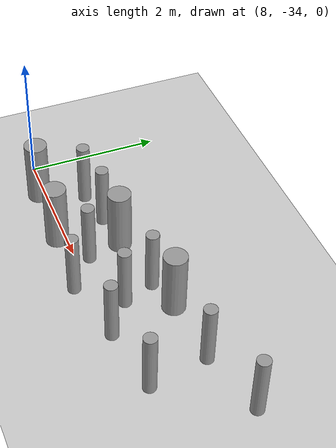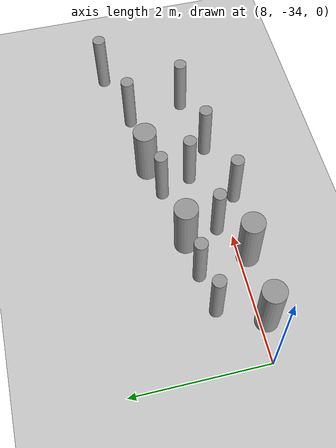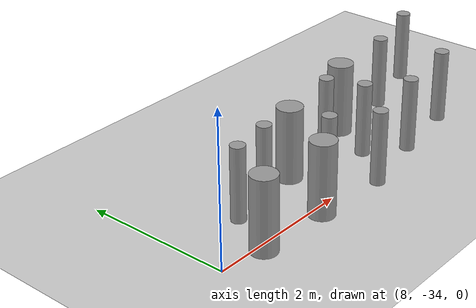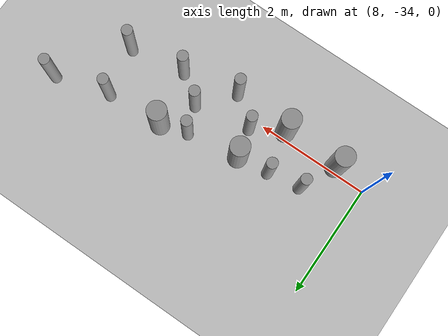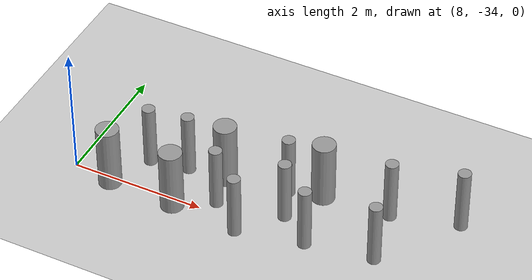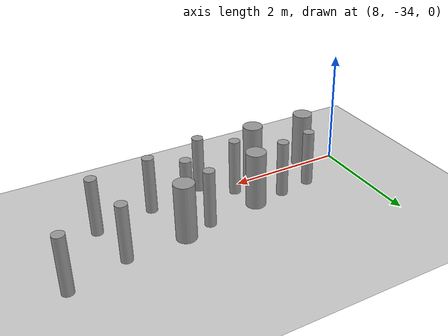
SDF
<sdf version="1.6">
 <world name="default">
  <model name="ground_plane">
   <static>1</static>
   <link name="link">
    <collision name="collision">
     <geometry><plane><normal>0 0 1</normal><size>100 100</size></plane></geometry>
     <surface><friction><ode><mu>100</mu><mu2>50</mu2></ode></friction></surface>
    </collision>
    <visual name="visual">
     <cast_shadows>0</cast_shadows>
     <geometry><plane><normal>0 0 1</normal><size>100 100</size></plane></geometry>
     <material>
      <script><uri>file://media/materials/scripts/gazebo.material</uri><name>Gazebo/Grey</name></script>
     </material>
    </visual>
   </link>
  </model>
  <model name="cyl_wall_clone_clone_1_clone_1_clone_clone_1_clone_0_clone">
   <link name="link_0">
    <pose>-2.73893 -0.366465 0 0 -0 0</pose>
    <inertial>
     <mass>0.0374993</mass>
     <inertia>
      <ixx>0.00321281</ixx>
      <ixy>0</ixy>
      <ixz>0</ixz>
      <iyy>0.00321281</iyy>
      <iyz>0</iyz>
      <izz>0.000175774</izz>
     </inertia>
    </inertial>
    <visual name="visual">
     <geometry><cylinder><radius>0.0968661</radius><length>1</length></cylinder></geometry>
     <material>
      <lighting>1</lighting>
      <script><uri>file://media/materials/scripts/gazebo.material</uri><name>Gazebo/Grey</name></script>
      <ambient>0.3 0.3 0.3 1</ambient>
      <diffuse>0.7 0.7 0.7 1</diffuse>
      <specular>0.01 0.01 0.01 1</specular>
      <emissive>0 0 0 1</emissive>
     </material>
    </visual>
    <collision name="collision">
     <geometry><cylinder><radius>0.096866</radius><length>1</length></cylinder></geometry>
     <surface>
      <friction>
       <ode><mu>1</mu><mu2>1</mu2><fdir1>0 0 0</fdir1><slip1>0</slip1><slip2>0</slip2></ode>
       <torsional>
        <coefficient>1</coefficient>
        <patch_radius>0</patch_radius>
        <surface_radius>0</surface_radius>
        <use_patch_radius>1</use_patch_radius>
        <ode><slip>0</slip></ode>
       </torsional>
      </friction>
      <bounce><restitution_coefficient>0</restitution_coefficient><threshold>1e+06</threshold></bounce>
      <contact>
       <collide_without_contact>0</collide_without_contact>
       <collide_without_contact_bitmask>1</collide_without_contact_bitmask>
       <collide_bitmask>1</collide_bitmask>
       <ode>
        <soft_cfm>0</soft_cfm>
        <soft_erp>0.2</soft_erp>
        <kp>1e+13</kp>
        <kd>1</kd>
        <max_vel>0.01</max_vel>
        <min_depth>0</min_depth>
       </ode>
       <bullet>
        <split_impulse>1</split_impulse>
        <split_impulse_penetration_threshold>-0.01</split_impulse_penetration_threshold>
        <soft_cfm>0</soft_cfm>
        <soft_erp>0.2</soft_erp>
        <kp>1e+13</kp>
        <kd>1</kd>
       </bullet>
      </contact>
     </surface>
    </collision>
   </link>
   <link name="link_0_clone">
    <pose>-1.73893 0.61877 0 0 -0 0</pose>
    <inertial>
     <mass>0.0374993</mass>
     <inertia>
      <ixx>0.00321281</ixx>
      <ixy>0</ixy>
      <ixz>0</ixz>
      <iyy>0.00321281</iyy>
      <iyz>0</iyz>
      <izz>0.000175774</izz>
     </inertia>
    </inertial>
    <visual name="visual">
     <geometry><cylinder><radius>0.0968661</radius><length>1</length></cylinder></geometry>
     <material>
      <lighting>1</lighting>
      <script><uri>file://media/materials/scripts/gazebo.material</uri><name>Gazebo/Grey</name></script>
      <ambient>0.3 0.3 0.3 1</ambient>
      <diffuse>0.7 0.7 0.7 1</diffuse>
      <specular>0.01 0.01 0.01 1</specular>
      <emissive>0 0 0 1</emissive>
      <shader type="pixel"/>
     </material>
    </visual>
    <collision name="collision">
     <geometry><cylinder><radius>0.096866</radius><length>1</length></cylinder></geometry>
     <surface>
      <friction>
       <ode><mu>1</mu><mu2>1</mu2><fdir1>0 0 0</fdir1><slip1>0</slip1><slip2>0</slip2></ode>
       <torsional>
        <coefficient>1</coefficient>
        <patch_radius>0</patch_radius>
        <surface_radius>0</surface_radius>
        <use_patch_radius>1</use_patch_radius>
        <ode><slip>0</slip></ode>
       </torsional>
      </friction>
      <bounce><restitution_coefficient>0</restitution_coefficient><threshold>1e+06</threshold></bounce>
      <contact>
       <collide_without_contact>0</collide_without_contact>
       <collide_without_contact_bitmask>1</collide_without_contact_bitmask>
       <collide_bitmask>1</collide_bitmask>
       <ode>
        <soft_cfm>0</soft_cfm>
        <soft_erp>0.2</soft_erp>
        <kp>1e+13</kp>
        <kd>1</kd>
        <max_vel>0.01</max_vel>
        <min_depth>0</min_depth>
       </ode>
       <bullet>
        <split_impulse>1</split_impulse>
        <split_impulse_penetration_threshold>-0.01</split_impulse_penetration_threshold>
        <soft_cfm>0</soft_cfm>
        <soft_erp>0.2</soft_erp>
        <kp>1e+13</kp>
        <kd>1</kd>
       </bullet>
      </contact>
     </surface>
    </collision>
   </link>
   <link name="link_0_clone_clone">
    <pose>-0.327073 0.143919 0 0 -0 0</pose>
    <inertial>
     <mass>0.0374993</mass>
     <inertia>
      <ixx>0.00321281</ixx>
      <ixy>0</ixy>
      <ixz>0</ixz>
      <iyy>0.00321281</iyy>
      <iyz>0</iyz>
      <izz>0.000175774</izz>
     </inertia>
    </inertial>
    <visual name="visual">
     <geometry><cylinder><radius>0.0968661</radius><length>1</length></cylinder></geometry>
     <material>
      <lighting>1</lighting>
      <script><uri>file://media/materials/scripts/gazebo.material</uri><name>Gazebo/Grey</name></script>
      <ambient>0.3 0.3 0.3 1</ambient>
      <diffuse>0.7 0.7 0.7 1</diffuse>
      <specular>0.01 0.01 0.01 1</specular>
      <emissive>0 0 0 1</emissive>
      <shader type="pixel"/>
     </material>
    </visual>
    <collision name="collision">
     <geometry><cylinder><radius>0.096866</radius><length>1</length></cylinder></geometry>
     <surface>
      <friction>
       <ode><mu>1</mu><mu2>1</mu2><fdir1>0 0 0</fdir1><slip1>0</slip1><slip2>0</slip2></ode>
       <torsional>
        <coefficient>1</coefficient>
        <patch_radius>0</patch_radius>
        <surface_radius>0</surface_radius>
        <use_patch_radius>1</use_patch_radius>
        <ode><slip>0</slip></ode>
       </torsional>
      </friction>
      <bounce><restitution_coefficient>0</restitution_coefficient><threshold>1e+06</threshold></bounce>
      <contact>
       <collide_without_contact>0</collide_without_contact>
       <collide_without_contact_bitmask>1</collide_without_contact_bitmask>
       <collide_bitmask>1</collide_bitmask>
       <ode>
        <soft_cfm>0</soft_cfm>
        <soft_erp>0.2</soft_erp>
        <kp>1e+13</kp>
        <kd>1</kd>
        <max_vel>0.01</max_vel>
        <min_depth>0</min_depth>
       </ode>
       <bullet>
        <split_impulse>1</split_impulse>
        <split_impulse_penetration_threshold>-0.01</split_impulse_penetration_threshold>
        <soft_cfm>0</soft_cfm>
        <soft_erp>0.2</soft_erp>
        <kp>1e+13</kp>
        <kd>1</kd>
       </bullet>
      </contact>
     </surface>
    </collision>
   </link>
   <link name="link_0_clone_clone_0">
    <pose>1.26107 -0.419359 0 0 -0 0</pose>
    <inertial>
     <mass>0.0374993</mass>
     <inertia>
      <ixx>0.00321281</ixx>
      <ixy>0</ixy>
      <ixz>0</ixz>
      <iyy>0.00321281</iyy>
      <iyz>0</iyz>
      <izz>0.000175774</izz>
     </inertia>
    </inertial>
    <visual name="visual">
     <geometry><cylinder><radius>0.0968661</radius><length>1</length></cylinder></geometry>
     <material>
      <lighting>1</lighting>
      <script><uri>file://media/materials/scripts/gazebo.material</uri><name>Gazebo/Grey</name></script>
      <ambient>0.3 0.3 0.3 1</ambient>
      <diffuse>0.7 0.7 0.7 1</diffuse>
      <specular>0.01 0.01 0.01 1</specular>
      <emissive>0 0 0 1</emissive>
      <shader type="pixel"/>
     </material>
    </visual>
    <collision name="collision">
     <geometry><cylinder><radius>0.096866</radius><length>1</length></cylinder></geometry>
     <surface>
      <friction>
       <ode><mu>1</mu><mu2>1</mu2><fdir1>0 0 0</fdir1><slip1>0</slip1><slip2>0</slip2></ode>
       <torsional>
        <coefficient>1</coefficient>
        <patch_radius>0</patch_radius>
        <surface_radius>0</surface_radius>
        <use_patch_radius>1</use_patch_radius>
        <ode><slip>0</slip></ode>
       </torsional>
      </friction>
      <bounce><restitution_coefficient>0</restitution_coefficient><threshold>1e+06</threshold></bounce>
      <contact>
       <collide_without_contact>0</collide_without_contact>
       <collide_without_contact_bitmask>1</collide_without_contact_bitmask>
       <collide_bitmask>1</collide_bitmask>
       <ode>
        <soft_cfm>0</soft_cfm>
        <soft_erp>0.2</soft_erp>
        <kp>1e+13</kp>
        <kd>1</kd>
        <max_vel>0.01</max_vel>
        <min_depth>0</min_depth>
       </ode>
       <bullet>
        <split_impulse>1</split_impulse>
        <split_impulse_penetration_threshold>-0.01</split_impulse_penetration_threshold>
        <soft_cfm>0</soft_cfm>
        <soft_erp>0.2</soft_erp>
        <kp>1e+13</kp>
        <kd>1</kd>
       </bullet>
      </contact>
     </surface>
    </collision>
   </link>
   <link name="link_0_clone_clone_1">
    <pose>-1.73893 -0.277168 0 0 -0 0</pose>
    <inertial>
     <mass>0.0374993</mass>
     <inertia>
      <ixx>0.00321281</ixx>
      <ixy>0</ixy>
      <ixz>0</ixz>
      <iyy>0.00321281</iyy>
      <iyz>0</iyz>
      <izz>0.000175774</izz>
     </inertia>
    </inertial>
    <visual name="visual">
     <geometry><cylinder><radius>0.0968661</radius><length>1</length></cylinder></geometry>
     <material>
      <lighting>1</lighting>
      <script><uri>file://media/materials/scripts/gazebo.material</uri><name>Gazebo/Grey</name></script>
      <ambient>0.3 0.3 0.3 1</ambient>
      <diffuse>0.7 0.7 0.7 1</diffuse>
      <specular>0.01 0.01 0.01 1</specular>
      <emissive>0 0 0 1</emissive>
      <shader type="pixel"/>
     </material>
    </visual>
    <collision name="collision">
     <geometry><cylinder><radius>0.096866</radius><length>1</length></cylinder></geometry>
     <surface>
      <friction>
       <ode><mu>1</mu><mu2>1</mu2><fdir1>0 0 0</fdir1><slip1>0</slip1><slip2>0</slip2></ode>
       <torsional>
        <coefficient>1</coefficient>
        <patch_radius>0</patch_radius>
        <surface_radius>0</surface_radius>
        <use_patch_radius>1</use_patch_radius>
        <ode><slip>0</slip></ode>
       </torsional>
      </friction>
      <bounce><restitution_coefficient>0</restitution_coefficient><threshold>1e+06</threshold></bounce>
      <contact>
       <collide_without_contact>0</collide_without_contact>
       <collide_without_contact_bitmask>1</collide_without_contact_bitmask>
       <collide_bitmask>1</collide_bitmask>
       <ode>
        <soft_cfm>0</soft_cfm>
        <soft_erp>0.2</soft_erp>
        <kp>1e+13</kp>
        <kd>1</kd>
        <max_vel>0.01</max_vel>
        <min_depth>0</min_depth>
       </ode>
       <bullet>
        <split_impulse>1</split_impulse>
        <split_impulse_penetration_threshold>-0.01</split_impulse_penetration_threshold>
        <soft_cfm>0</soft_cfm>
        <soft_erp>0.2</soft_erp>
        <kp>1e+13</kp>
        <kd>1</kd>
       </bullet>
      </contact>
     </surface>
    </collision>
   </link>
   <link name="link_0_clone_clone_2">
    <pose>-0.738934 0.593961 0 0 -0 0</pose>
    <inertial>
     <mass>0.0374993</mass>
     <inertia>
      <ixx>0.00321281</ixx>
      <ixy>0</ixy>
      <ixz>0</ixz>
      <iyy>0.00321281</iyy>
      <iyz>0</iyz>
      <izz>0.000175774</izz>
     </inertia>
    </inertial>
    <visual name="visual">
     <geometry><cylinder><radius>0.0968661</radius><length>1</length></cylinder></geometry>
     <material>
      <lighting>1</lighting>
      <script><uri>file://media/materials/scripts/gazebo.material</uri><name>Gazebo/Grey</name></script>
      <ambient>0.3 0.3 0.3 1</ambient>
      <diffuse>0.7 0.7 0.7 1</diffuse>
      <specular>0.01 0.01 0.01 1</specular>
      <emissive>0 0 0 1</emissive>
      <shader type="pixel"/>
     </material>
    </visual>
    <collision name="collision">
     <geometry><cylinder><radius>0.096866</radius><length>1</length></cylinder></geometry>
     <surface>
      <friction>
       <ode><mu>1</mu><mu2>1</mu2><fdir1>0 0 0</fdir1><slip1>0</slip1><slip2>0</slip2></ode>
       <torsional>
        <coefficient>1</coefficient>
        <patch_radius>0</patch_radius>
        <surface_radius>0</surface_radius>
        <use_patch_radius>1</use_patch_radius>
        <ode><slip>0</slip></ode>
       </torsional>
      </friction>
      <bounce><restitution_coefficient>0</restitution_coefficient><threshold>1e+06</threshold></bounce>
      <contact>
       <collide_without_contact>0</collide_without_contact>
       <collide_without_contact_bitmask>1</collide_without_contact_bitmask>
       <collide_bitmask>1</collide_bitmask>
       <ode>
        <soft_cfm>0</soft_cfm>
        <soft_erp>0.2</soft_erp>
        <kp>1e+13</kp>
        <kd>1</kd>
        <max_vel>0.01</max_vel>
        <min_depth>0</min_depth>
       </ode>
       <bullet>
        <split_impulse>1</split_impulse>
        <split_impulse_penetration_threshold>-0.01</split_impulse_penetration_threshold>
        <soft_cfm>0</soft_cfm>
        <soft_erp>0.2</soft_erp>
        <kp>1e+13</kp>
        <kd>1</kd>
       </bullet>
      </contact>
     </surface>
    </collision>
   </link>
   <link name="link_0_clone_clone_3">
    <pose>0.261066 0.624849 0 0 -0 0</pose>
    <inertial>
     <mass>0.0374993</mass>
     <inertia>
      <ixx>0.00321281</ixx>
      <ixy>0</ixy>
      <ixz>0</ixz>
      <iyy>0.00321281</iyy>
      <iyz>0</iyz>
      <izz>0.000175774</izz>
     </inertia>
    </inertial>
    <visual name="visual">
     <geometry><cylinder><radius>0.0968661</radius><length>1</length></cylinder></geometry>
     <material>
      <lighting>1</lighting>
      <script><uri>file://media/materials/scripts/gazebo.material</uri><name>Gazebo/Grey</name></script>
      <ambient>0.3 0.3 0.3 1</ambient>
      <diffuse>0.7 0.7 0.7 1</diffuse>
      <specular>0.01 0.01 0.01 1</specular>
      <emissive>0 0 0 1</emissive>
      <shader type="pixel"/>
     </material>
    </visual>
    <collision name="collision">
     <geometry><cylinder><radius>0.096866</radius><length>1</length></cylinder></geometry>
     <surface>
      <friction>
       <ode><mu>1</mu><mu2>1</mu2><fdir1>0 0 0</fdir1><slip1>0</slip1><slip2>0</slip2></ode>
       <torsional>
        <coefficient>1</coefficient>
        <patch_radius>0</patch_radius>
        <surface_radius>0</surface_radius>
        <use_patch_radius>1</use_patch_radius>
        <ode><slip>0</slip></ode>
       </torsional>
      </friction>
      <bounce><restitution_coefficient>0</restitution_coefficient><threshold>1e+06</threshold></bounce>
      <contact>
       <collide_without_contact>0</collide_without_contact>
       <collide_without_contact_bitmask>1</collide_without_contact_bitmask>
       <collide_bitmask>1</collide_bitmask>
       <ode>
        <soft_cfm>0</soft_cfm>
        <soft_erp>0.2</soft_erp>
        <kp>1e+13</kp>
        <kd>1</kd>
        <max_vel>0.01</max_vel>
        <min_depth>0</min_depth>
       </ode>
       <bullet>
        <split_impulse>1</split_impulse>
        <split_impulse_penetration_threshold>-0.01</split_impulse_penetration_threshold>
        <soft_cfm>0</soft_cfm>
        <soft_erp>0.2</soft_erp>
        <kp>1e+13</kp>
        <kd>1</kd>
       </bullet>
      </contact>
     </surface>
    </collision>
   </link>
   <link name="link_0_clone_clone_4">
    <pose>-0.239049 -0.353105 0 0 -0 0</pose>
    <inertial>
     <mass>0.0374993</mass>
     <inertia>
      <ixx>0.00321281</ixx>
      <ixy>0</ixy>
      <ixz>0</ixz>
      <iyy>0.00321281</iyy>
      <iyz>0</iyz>
      <izz>0.000175774</izz>
     </inertia>
    </inertial>
    <visual name="visual">
     <geometry><cylinder><radius>0.0968661</radius><length>1</length></cylinder></geometry>
     <material>
      <lighting>1</lighting>
      <script><uri>file://media/materials/scripts/gazebo.material</uri><name>Gazebo/Grey</name></script>
      <ambient>0.3 0.3 0.3 1</ambient>
      <diffuse>0.7 0.7 0.7 1</diffuse>
      <specular>0.01 0.01 0.01 1</specular>
      <emissive>0 0 0 1</emissive>
      <shader type="pixel"/>
     </material>
    </visual>
    <collision name="collision">
     <geometry><cylinder><radius>0.096866</radius><length>1</length></cylinder></geometry>
     <surface>
      <friction>
       <ode><mu>1</mu><mu2>1</mu2><fdir1>0 0 0</fdir1><slip1>0</slip1><slip2>0</slip2></ode>
       <torsional>
        <coefficient>1</coefficient>
        <patch_radius>0</patch_radius>
        <surface_radius>0</surface_radius>
        <use_patch_radius>1</use_patch_radius>
        <ode><slip>0</slip></ode>
       </torsional>
      </friction>
      <bounce><restitution_coefficient>0</restitution_coefficient><threshold>1e+06</threshold></bounce>
      <contact>
       <collide_without_contact>0</collide_without_contact>
       <collide_without_contact_bitmask>1</collide_without_contact_bitmask>
       <collide_bitmask>1</collide_bitmask>
       <ode>
        <soft_cfm>0</soft_cfm>
        <soft_erp>0.2</soft_erp>
        <kp>1e+13</kp>
        <kd>1</kd>
        <max_vel>0.01</max_vel>
        <min_depth>0</min_depth>
       </ode>
       <bullet>
        <split_impulse>1</split_impulse>
        <split_impulse_penetration_threshold>-0.01</split_impulse_penetration_threshold>
        <soft_cfm>0</soft_cfm>
        <soft_erp>0.2</soft_erp>
        <kp>1e+13</kp>
        <kd>1</kd>
       </bullet>
      </contact>
     </surface>
    </collision>
   </link>
   <link name="link_0_clone_clone_5">
    <pose>0.672792 0.143919 0 0 -0 0</pose>
    <inertial>
     <mass>0.0374993</mass>
     <inertia>
      <ixx>0.00321281</ixx>
      <ixy>0</ixy>
      <ixz>0</ixz>
      <iyy>0.00321281</iyy>
      <iyz>0</iyz>
      <izz>0.000175774</izz>
     </inertia>
    </inertial>
    <visual name="visual">
     <geometry><cylinder><radius>0.0968661</radius><length>1</length></cylinder></geometry>
     <material>
      <lighting>1</lighting>
      <script><uri>file://media/materials/scripts/gazebo.material</uri><name>Gazebo/Grey</name></script>
      <ambient>0.3 0.3 0.3 1</ambient>
      <diffuse>0.7 0.7 0.7 1</diffuse>
      <specular>0.01 0.01 0.01 1</specular>
      <emissive>0 0 0 1</emissive>
      <shader type="pixel"/>
     </material>
    </visual>
    <collision name="collision">
     <geometry><cylinder><radius>0.096866</radius><length>1</length></cylinder></geometry>
     <surface>
      <friction>
       <ode><mu>1</mu><mu2>1</mu2><fdir1>0 0 0</fdir1><slip1>0</slip1><slip2>0</slip2></ode>
       <torsional>
        <coefficient>1</coefficient>
        <patch_radius>0</patch_radius>
        <surface_radius>0</surface_radius>
        <use_patch_radius>1</use_patch_radius>
        <ode><slip>0</slip></ode>
       </torsional>
      </friction>
      <bounce><restitution_coefficient>0</restitution_coefficient><threshold>1e+06</threshold></bounce>
      <contact>
       <collide_without_contact>0</collide_without_contact>
       <collide_without_contact_bitmask>1</collide_without_contact_bitmask>
       <collide_bitmask>1</collide_bitmask>
       <ode>
        <soft_cfm>0</soft_cfm>
        <soft_erp>0.2</soft_erp>
        <kp>1e+13</kp>
        <kd>1</kd>
        <max_vel>0.01</max_vel>
        <min_depth>0</min_depth>
       </ode>
       <bullet>
        <split_impulse>1</split_impulse>
        <split_impulse_penetration_threshold>-0.01</split_impulse_penetration_threshold>
        <soft_cfm>0</soft_cfm>
        <soft_erp>0.2</soft_erp>
        <kp>1e+13</kp>
        <kd>1</kd>
       </bullet>
      </contact>
     </surface>
    </collision>
   </link>
   <link name="link_0_clone_clone_6">
    <pose>1.84596 -0.433423 0 0 -0 0</pose>
    <inertial>
     <mass>0.0374993</mass>
     <inertia>
      <ixx>0.00321281</ixx>
      <ixy>0</ixy>
      <ixz>0</ixz>
      <iyy>0.00321281</iyy>
      <iyz>0</iyz>
      <izz>0.000175774</izz>
     </inertia>
    </inertial>
    <visual name="visual">
     <geometry><cylinder><radius>0.0968661</radius><length>1</length></cylinder></geometry>
     <material>
      <lighting>1</lighting>
      <script><uri>file://media/materials/scripts/gazebo.material</uri><name>Gazebo/Grey</name></script>
      <ambient>0.3 0.3 0.3 1</ambient>
      <diffuse>0.7 0.7 0.7 1</diffuse>
      <specular>0.01 0.01 0.01 1</specular>
      <emissive>0 0 0 1</emissive>
      <shader type="pixel"/>
     </material>
    </visual>
    <collision name="collision">
     <geometry><cylinder><radius>0.096866</radius><length>1</length></cylinder></geometry>
     <surface>
      <friction>
       <ode><mu>1</mu><mu2>1</mu2><fdir1>0 0 0</fdir1><slip1>0</slip1><slip2>0</slip2></ode>
       <torsional>
        <coefficient>1</coefficient>
        <patch_radius>0</patch_radius>
        <surface_radius>0</surface_radius>
        <use_patch_radius>1</use_patch_radius>
        <ode><slip>0</slip></ode>
       </torsional>
      </friction>
      <bounce><restitution_coefficient>0</restitution_coefficient><threshold>1e+06</threshold></bounce>
      <contact>
       <collide_without_contact>0</collide_without_contact>
       <collide_without_contact_bitmask>1</collide_without_contact_bitmask>
       <collide_bitmask>1</collide_bitmask>
       <ode>
        <soft_cfm>0</soft_cfm>
        <soft_erp>0.2</soft_erp>
        <kp>1e+13</kp>
        <kd>1</kd>
        <max_vel>0.01</max_vel>
        <min_depth>0</min_depth>
       </ode>
       <bullet>
        <split_impulse>1</split_impulse>
        <split_impulse_penetration_threshold>-0.01</split_impulse_penetration_threshold>
        <soft_cfm>0</soft_cfm>
        <soft_erp>0.2</soft_erp>
        <kp>1e+13</kp>
        <kd>1</kd>
       </bullet>
      </contact>
     </surface>
    </collision>
   </link>
   <link name="link_1">
    <pose>-0.738934 -0.397931 0 0 -0 0</pose>
    <inertial>
     <mass>0.117398</mass>
     <inertia>
      <ixx>0.0106445</ixx>
      <ixy>0</ixy>
      <ixz>0</ixz>
      <iyy>0.0106445</iyy>
      <iyz>0</iyz>
      <izz>0.00172278</izz>
     </inertia>
    </inertial>
    <visual name="visual">
     <geometry><cylinder><radius>0.171317</radius><length>1</length></cylinder></geometry>
     <material>
      <lighting>1</lighting>
      <script><uri>file://media/materials/scripts/gazebo.material</uri><name>Gazebo/Grey</name></script>
      <ambient>0.3 0.3 0.3 1</ambient>
      <diffuse>0.7 0.7 0.7 1</diffuse>
      <specular>0.01 0.01 0.01 1</specular>
      <emissive>0 0 0 1</emissive>
     </material>
    </visual>
    <collision name="collision">
     <geometry><cylinder><radius>0.171317</radius><length>1</length></cylinder></geometry>
     <surface>
      <friction>
       <ode><mu>1</mu><mu2>1</mu2><fdir1>0 0 0</fdir1><slip1>0</slip1><slip2>0</slip2></ode>
       <torsional>
        <coefficient>1</coefficient>
        <patch_radius>0</patch_radius>
        <surface_radius>0</surface_radius>
        <use_patch_radius>1</use_patch_radius>
        <ode><slip>0</slip></ode>
       </torsional>
      </friction>
      <bounce><restitution_coefficient>0</restitution_coefficient><threshold>1e+06</threshold></bounce>
      <contact>
       <collide_without_contact>0</collide_without_contact>
       <collide_without_contact_bitmask>1</collide_without_contact_bitmask>
       <collide_bitmask>1</collide_bitmask>
       <ode>
        <soft_cfm>0</soft_cfm>
        <soft_erp>0.2</soft_erp>
        <kp>1e+13</kp>
        <kd>1</kd>
        <max_vel>0.01</max_vel>
        <min_depth>0</min_depth>
       </ode>
       <bullet>
        <split_impulse>1</split_impulse>
        <split_impulse_penetration_threshold>-0.01</split_impulse_penetration_threshold>
        <soft_cfm>0</soft_cfm>
        <soft_erp>0.2</soft_erp>
        <kp>1e+13</kp>
        <kd>1</kd>
       </bullet>
      </contact>
     </surface>
    </collision>
   </link>
   <link name="link_1_clone">
    <pose>0.697784 -0.380861 0 0 -0 0</pose>
    <inertial>
     <mass>0.117398</mass>
     <inertia>
      <ixx>0.0106445</ixx>
      <ixy>0</ixy>
      <ixz>0</ixz>
      <iyy>0.0106445</iyy>
      <iyz>0</iyz>
      <izz>0.00172278</izz>
     </inertia>
    </inertial>
    <visual name="visual">
     <geometry><cylinder><radius>0.171317</radius><length>1</length></cylinder></geometry>
     <material>
      <lighting>1</lighting>
      <script><uri>file://media/materials/scripts/gazebo.material</uri><name>Gazebo/Grey</name></script>
      <ambient>0.3 0.3 0.3 1</ambient>
      <diffuse>0.7 0.7 0.7 1</diffuse>
      <specular>0.01 0.01 0.01 1</specular>
      <emissive>0 0 0 1</emissive>
      <shader type="pixel"/>
     </material>
    </visual>
    <collision name="collision">
     <geometry><cylinder><radius>0.171317</radius><length>1</length></cylinder></geometry>
     <surface>
      <friction>
       <ode><mu>1</mu><mu2>1</mu2><fdir1>0 0 0</fdir1><slip1>0</slip1><slip2>0</slip2></ode>
       <torsional>
        <coefficient>1</coefficient>
        <patch_radius>0</patch_radius>
        <surface_radius>0</surface_radius>
        <use_patch_radius>1</use_patch_radius>
        <ode><slip>0</slip></ode>
       </torsional>
      </friction>
      <bounce><restitution_coefficient>0</restitution_coefficient><threshold>1e+06</threshold></bounce>
      <contact>
       <collide_without_contact>0</collide_without_contact>
       <collide_without_contact_bitmask>1</collide_without_contact_bitmask>
       <collide_bitmask>1</collide_bitmask>
       <ode>
        <soft_cfm>0</soft_cfm>
        <soft_erp>0.2</soft_erp>
        <kp>1e+13</kp>
        <kd>1</kd>
        <max_vel>0.01</max_vel>
        <min_depth>0</min_depth>
       </ode>
       <bullet>
        <split_impulse>1</split_impulse>
        <split_impulse_penetration_threshold>-0.01</split_impulse_penetration_threshold>
        <soft_cfm>0</soft_cfm>
        <soft_erp>0.2</soft_erp>
        <kp>1e+13</kp>
        <kd>1</kd>
       </bullet>
      </contact>
     </surface>
    </collision>
   </link>
   <link name="link_1_clone_0">
    <pose>1.26107 0.358974 0 0 -0 0</pose>
    <inertial>
     <mass>0.117398</mass>
     <inertia>
      <ixx>0.0106445</ixx>
      <ixy>0</ixy>
      <ixz>0</ixz>
      <iyy>0.0106445</iyy>
      <iyz>0</iyz>
      <izz>0.00172278</izz>
     </inertia>
    </inertial>
    <visual name="visual">
     <geometry><cylinder><radius>0.171317</radius><length>1</length></cylinder></geometry>
     <material>
      <lighting>1</lighting>
      <script><uri>file://media/materials/scripts/gazebo.material</uri><name>Gazebo/Grey</name></script>
      <ambient>0.3 0.3 0.3 1</ambient>
      <diffuse>0.7 0.7 0.7 1</diffuse>
      <specular>0.01 0.01 0.01 1</specular>
      <emissive>0 0 0 1</emissive>
      <shader type="pixel"/>
     </material>
    </visual>
    <collision name="collision">
     <geometry><cylinder><radius>0.171317</radius><length>1</length></cylinder></geometry>
     <surface>
      <friction>
       <ode><mu>1</mu><mu2>1</mu2><fdir1>0 0 0</fdir1><slip1>0</slip1><slip2>0</slip2></ode>
       <torsional>
        <coefficient>1</coefficient>
        <patch_radius>0</patch_radius>
        <surface_radius>0</surface_radius>
        <use_patch_radius>1</use_patch_radius>
        <ode><slip>0</slip></ode>
       </torsional>
      </friction>
      <bounce><restitution_coefficient>0</restitution_coefficient><threshold>1e+06</threshold></bounce>
      <contact>
       <collide_without_contact>0</collide_without_contact>
       <collide_without_contact_bitmask>1</collide_without_contact_bitmask>
       <collide_bitmask>1</collide_bitmask>
       <ode>
        <soft_cfm>0</soft_cfm>
        <soft_erp>0.2</soft_erp>
        <kp>1e+13</kp>
        <kd>1</kd>
        <max_vel>0.01</max_vel>
        <min_depth>0</min_depth>
       </ode>
       <bullet>
        <split_impulse>1</split_impulse>
        <split_impulse_penetration_threshold>-0.01</split_impulse_penetration_threshold>
        <soft_cfm>0</soft_cfm>
        <soft_erp>0.2</soft_erp>
        <kp>1e+13</kp>
        <kd>1</kd>
       </bullet>
      </contact>
     </surface>
    </collision>
   </link>
   <link name="link_1_clone_1">
    <pose>2.26107 0.143919 0 0 -0 0</pose>
    <inertial>
     <mass>0.117398</mass>
     <inertia>
      <ixx>0.0106445</ixx>
      <ixy>0</ixy>
      <ixz>0</ixz>
      <iyy>0.0106445</iyy>
      <iyz>0</iyz>
      <izz>0.00172278</izz>
     </inertia>
    </inertial>
    <visual name="visual">
     <geometry><cylinder><radius>0.171317</radius><length>1</length></cylinder></geometry>
     <material>
      <lighting>1</lighting>
      <script><uri>file://media/materials/scripts/gazebo.material</uri><name>Gazebo/Grey</name></script>
      <ambient>0.3 0.3 0.3 1</ambient>
      <diffuse>0.7 0.7 0.7 1</diffuse>
      <specular>0.01 0.01 0.01 1</specular>
      <emissive>0 0 0 1</emissive>
      <shader type="pixel"/>
     </material>
    </visual>
    <collision name="collision">
     <geometry><cylinder><radius>0.171317</radius><length>1</length></cylinder></geometry>
     <surface>
      <friction>
       <ode><mu>1</mu><mu2>1</mu2><fdir1>0 0 0</fdir1><slip1>0</slip1><slip2>0</slip2></ode>
       <torsional>
        <coefficient>1</coefficient>
        <patch_radius>0</patch_radius>
        <surface_radius>0</surface_radius>
        <use_patch_radius>1</use_patch_radius>
        <ode><slip>0</slip></ode>
       </torsional>
      </friction>
      <bounce><restitution_coefficient>0</restitution_coefficient><threshold>1e+06</threshold></bounce>
      <contact>
       <collide_without_contact>0</collide_without_contact>
       <collide_without_contact_bitmask>1</collide_without_contact_bitmask>
       <collide_bitmask>1</collide_bitmask>
       <ode>
        <soft_cfm>0</soft_cfm>
        <soft_erp>0.2</soft_erp>
        <kp>1e+13</kp>
        <kd>1</kd>
        <max_vel>0.01</max_vel>
        <min_depth>0</min_depth>
       </ode>
       <bullet>
        <split_impulse>1</split_impulse>
        <split_impulse_penetration_threshold>-0.01</split_impulse_penetration_threshold>
        <soft_cfm>0</soft_cfm>
        <soft_erp>0.2</soft_erp>
        <kp>1e+13</kp>
        <kd>1</kd>
       </bullet>
      </contact>
     </surface>
    </collision>
   </link>
   <static>1</static>
   <pose>10.8053 -33.541 0.5 0 0 -2.95907</pose>
  </model>
 </world>
</sdf>
